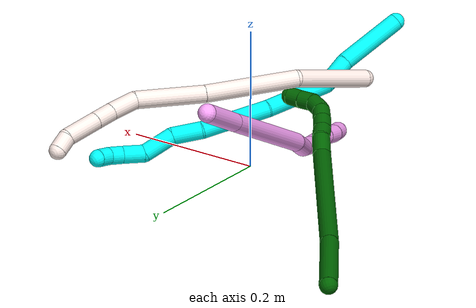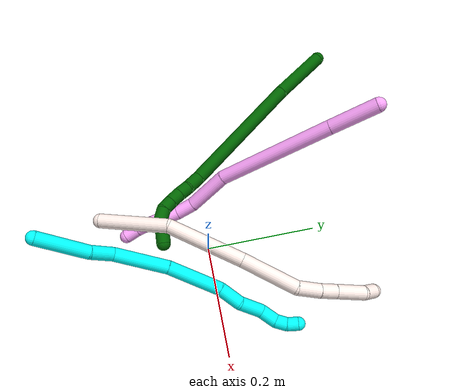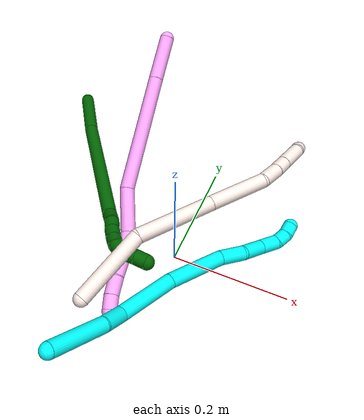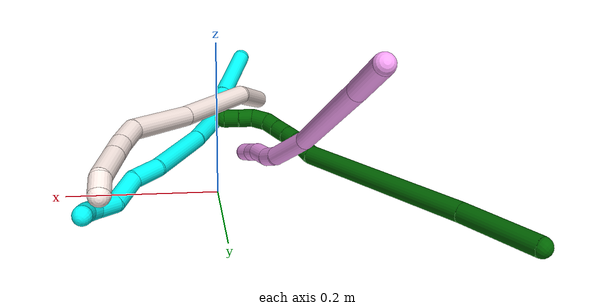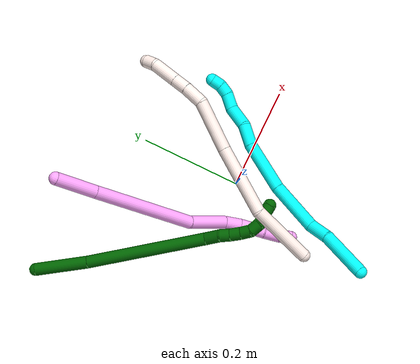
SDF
<sdf version="1.7">
 <world name="default">
  <model name="3">
   <static>0</static>
   <link name="3">
    <collision name="collision-cylinder-e_1_1_4">
     <pose>0.009274 -0.003301 -0.046771 3.07112 0.195273 2.45071</pose>
     <geometry><cylinder><radius>0.0125</radius><length>0.095592</length></cylinder></geometry>
     <surface>
      <friction><ode><mu>1.16</mu><mu2>1.16</mu2><slip1>0</slip1><slip2>0</slip2></ode></friction>
      <contact><ode><kp>1e+06</kp><kd>1</kd><max_vel>0</max_vel><min_depth>0.001</min_depth></ode></contact>
     </surface>
    </collision>
    <visual name="visual-cylinder-e_1_1_4">
     <pose>0.009274 -0.003301 -0.046771 3.07112 0.195273 2.45071</pose>
     <geometry><cylinder><radius>0.0125</radius><length>0.095592</length></cylinder></geometry>
     <material><ambient>0.003922 1 0.996078 1</ambient></material>
    </visual>
    <collision name="collision-cylinder-e_2_4_5">
     <pose>0.021694 -0.012621 -0.114263 2.85893 0.144792 0.94279</pose>
     <geometry><cylinder><radius>0.0125</radius><length>0.04361</length></cylinder></geometry>
     <surface>
      <friction><ode><mu>1.16</mu><mu2>1.16</mu2><slip1>0</slip1><slip2>0</slip2></ode></friction>
      <contact><ode><kp>1e+06</kp><kd>1</kd><max_vel>0</max_vel><min_depth>0.001</min_depth></ode></contact>
     </surface>
    </collision>
    <visual name="visual-cylinder-e_2_4_5">
     <pose>0.021694 -0.012621 -0.114263 2.85893 0.144792 0.94279</pose>
     <geometry><cylinder><radius>0.0125</radius><length>0.04361</length></cylinder></geometry>
     <material><ambient>0.003922 1 0.996078 1</ambient></material>
    </visual>
    <collision name="collision-cylinder-e_3_5_6">
     <pose>0.025186 -0.010293 -0.183752 -2.9721 0.006976 -0.082069</pose>
     <geometry><cylinder><radius>0.0125</radius><length>0.098958</length></cylinder></geometry>
     <surface>
      <friction><ode><mu>1.16</mu><mu2>1.16</mu2><slip1>0</slip1><slip2>0</slip2></ode></friction>
      <contact><ode><kp>1e+06</kp><kd>1</kd><max_vel>0</max_vel><min_depth>0.001</min_depth></ode></contact>
     </surface>
    </collision>
    <visual name="visual-cylinder-e_3_5_6">
     <pose>0.025186 -0.010293 -0.183752 -2.9721 0.006976 -0.082069</pose>
     <geometry><cylinder><radius>0.0125</radius><length>0.098958</length></cylinder></geometry>
     <material><ambient>0.003922 1 0.996078 1</ambient></material>
    </visual>
    <collision name="collision-cylinder-e_4_6_7">
     <pose>0.03208 0.011225 -0.280366 -2.87295 0.131211 -0.905072</pose>
     <geometry><cylinder><radius>0.0125</radius><length>0.100111</length></cylinder></geometry>
     <surface>
      <friction><ode><mu>1.16</mu><mu2>1.16</mu2><slip1>0</slip1><slip2>0</slip2></ode></friction>
      <contact><ode><kp>1e+06</kp><kd>1</kd><max_vel>0</max_vel><min_depth>0.001</min_depth></ode></contact>
     </surface>
    </collision>
    <visual name="visual-cylinder-e_4_6_7">
     <pose>0.03208 0.011225 -0.280366 -2.87295 0.131211 -0.905072</pose>
     <geometry><cylinder><radius>0.0125</radius><length>0.100111</length></cylinder></geometry>
     <material><ambient>0.003922 1 0.996078 1</ambient></material>
    </visual>
    <collision name="collision-cylinder-e_5_7_8">
     <pose>0.045021 0.032934 -0.346704 -2.70906 0.304091 -1.218</pose>
     <geometry><cylinder><radius>0.0125</radius><length>0.042695</length></cylinder></geometry>
     <surface>
      <friction><ode><mu>1.16</mu><mu2>1.16</mu2><slip1>0</slip1><slip2>0</slip2></ode></friction>
      <contact><ode><kp>1e+06</kp><kd>1</kd><max_vel>0</max_vel><min_depth>0.001</min_depth></ode></contact>
     </surface>
    </collision>
    <visual name="visual-cylinder-e_5_7_8">
     <pose>0.045021 0.032934 -0.346704 -2.70906 0.304091 -1.218</pose>
     <geometry><cylinder><radius>0.0125</radius><length>0.042695</length></cylinder></geometry>
     <material><ambient>0.003922 1 0.996078 1</ambient></material>
    </visual>
    <collision name="collision-cylinder-e_6_8_9">
     <pose>0.057024 0.042229 -0.387592 -3.10782 0.245353 -2.86932</pose>
     <geometry><cylinder><radius>0.0125</radius><length>0.046201</length></cylinder></geometry>
     <surface>
      <friction><ode><mu>1.16</mu><mu2>1.16</mu2><slip1>0</slip1><slip2>0</slip2></ode></friction>
      <contact><ode><kp>1e+06</kp><kd>1</kd><max_vel>0</max_vel><min_depth>0.001</min_depth></ode></contact>
     </surface>
    </collision>
    <visual name="visual-cylinder-e_6_8_9">
     <pose>0.057024 0.042229 -0.387592 -3.10782 0.245353 -2.86932</pose>
     <geometry><cylinder><radius>0.0125</radius><length>0.046201</length></cylinder></geometry>
     <material><ambient>0.003922 1 0.996078 1</ambient></material>
    </visual>
    <collision name="collision-cylinder-e_7_9_10">
     <pose>0.065696 0.051062 -0.42319 -2.59259 0.195268 -0.669439</pose>
     <geometry><cylinder><radius>0.0125</radius><length>0.031553</length></cylinder></geometry>
     <surface>
      <friction><ode><mu>1.16</mu><mu2>1.16</mu2><slip1>0</slip1><slip2>0</slip2></ode></friction>
      <contact><ode><kp>1e+06</kp><kd>1</kd><max_vel>0</max_vel><min_depth>0.001</min_depth></ode></contact>
     </surface>
    </collision>
    <visual name="visual-cylinder-e_7_9_10">
     <pose>0.065696 0.051062 -0.42319 -2.59259 0.195268 -0.669439</pose>
     <geometry><cylinder><radius>0.0125</radius><length>0.031553</length></cylinder></geometry>
     <material><ambient>0.003922 1 0.996078 1</ambient></material>
    </visual>
    <collision name="collision-cylinder-e_8_10_11">
     <pose>0.067379 0.063485 -0.446001 -2.71679 -0.129927 0.585965</pose>
     <geometry><cylinder><radius>0.0125</radius><length>0.021272</length></cylinder></geometry>
     <surface>
      <friction><ode><mu>1.16</mu><mu2>1.16</mu2><slip1>0</slip1><slip2>0</slip2></ode></friction>
      <contact><ode><kp>1e+06</kp><kd>1</kd><max_vel>0</max_vel><min_depth>0.001</min_depth></ode></contact>
     </surface>
    </collision>
    <visual name="visual-cylinder-e_8_10_11">
     <pose>0.067379 0.063485 -0.446001 -2.71679 -0.129927 0.585965</pose>
     <geometry><cylinder><radius>0.0125</radius><length>0.021272</length></cylinder></geometry>
     <material><ambient>0.003922 1 0.996078 1</ambient></material>
    </visual>
    <collision name="collision-cylinder-e_9_11_2">
     <pose>0.06203 0.069919 -0.464552 -2.91217 -0.408192 2.1257</pose>
     <geometry><cylinder><radius>0.0125</radius><length>0.020009</length></cylinder></geometry>
     <surface>
      <friction><ode><mu>1.16</mu><mu2>1.16</mu2><slip1>0</slip1><slip2>0</slip2></ode></friction>
      <contact><ode><kp>1e+06</kp><kd>1</kd><max_vel>0</max_vel><min_depth>0.001</min_depth></ode></contact>
     </surface>
    </collision>
    <visual name="visual-cylinder-e_9_11_2">
     <pose>0.06203 0.069919 -0.464552 -2.91217 -0.408192 2.1257</pose>
     <geometry><cylinder><radius>0.0125</radius><length>0.020009</length></cylinder></geometry>
     <material><ambient>0.003922 1 0.996078 1</ambient></material>
    </visual>
    <collision name="collision-sphere-2">
     <pose>0.058059 0.072008 -0.473494 0 -0 0</pose>
     <geometry><sphere><radius>0.0125</radius></sphere></geometry>
     <surface>
      <friction><ode><mu>1.16</mu><mu2>1.16</mu2><slip1>0</slip1><slip2>0</slip2></ode></friction>
      <contact><ode><kp>1e+06</kp><kd>1</kd><max_vel>0</max_vel><min_depth>0.001</min_depth></ode></contact>
     </surface>
    </collision>
    <visual name="visual-sphere-2">
     <pose>0.058059 0.072008 -0.473494 0 -0 0</pose>
     <geometry><sphere><radius>0.0125</radius></sphere></geometry>
     <material><ambient>0.003922 1 0.996078 1</ambient></material>
    </visual>
    <collision name="collision-sphere-11">
     <pose>0.066001 0.067831 -0.45561 0 -0 0</pose>
     <geometry><sphere><radius>0.0125</radius></sphere></geometry>
     <surface>
      <friction><ode><mu>1.16</mu><mu2>1.16</mu2><slip1>0</slip1><slip2>0</slip2></ode></friction>
      <contact><ode><kp>1e+06</kp><kd>1</kd><max_vel>0</max_vel><min_depth>0.001</min_depth></ode></contact>
     </surface>
    </collision>
    <visual name="visual-sphere-11">
     <pose>0.066001 0.067831 -0.45561 0 -0 0</pose>
     <geometry><sphere><radius>0.0125</radius></sphere></geometry>
     <material><ambient>0.003922 1 0.996078 1</ambient></material>
    </visual>
    <collision name="collision-sphere-10">
     <pose>0.068757 0.059138 -0.436392 0 -0 0</pose>
     <geometry><sphere><radius>0.0125</radius></sphere></geometry>
     <surface>
      <friction><ode><mu>1.16</mu><mu2>1.16</mu2><slip1>0</slip1><slip2>0</slip2></ode></friction>
      <contact><ode><kp>1e+06</kp><kd>1</kd><max_vel>0</max_vel><min_depth>0.001</min_depth></ode></contact>
     </surface>
    </collision>
    <visual name="visual-sphere-10">
     <pose>0.068757 0.059138 -0.436392 0 -0 0</pose>
     <geometry><sphere><radius>0.0125</radius></sphere></geometry>
     <material><ambient>0.003922 1 0.996078 1</ambient></material>
    </visual>
    <collision name="collision-sphere-9">
     <pose>0.062635 0.042986 -0.409988 0 -0 0</pose>
     <geometry><sphere><radius>0.0125</radius></sphere></geometry>
     <surface>
      <friction><ode><mu>1.16</mu><mu2>1.16</mu2><slip1>0</slip1><slip2>0</slip2></ode></friction>
      <contact><ode><kp>1e+06</kp><kd>1</kd><max_vel>0</max_vel><min_depth>0.001</min_depth></ode></contact>
     </surface>
    </collision>
    <visual name="visual-sphere-9">
     <pose>0.062635 0.042986 -0.409988 0 -0 0</pose>
     <geometry><sphere><radius>0.0125</radius></sphere></geometry>
     <material><ambient>0.003922 1 0.996078 1</ambient></material>
    </visual>
    <collision name="collision-sphere-4">
     <pose>0.018548 -0.006603 -0.093542 0 -0 0</pose>
     <geometry><sphere><radius>0.0125</radius></sphere></geometry>
     <surface>
      <friction><ode><mu>1.16</mu><mu2>1.16</mu2><slip1>0</slip1><slip2>0</slip2></ode></friction>
      <contact><ode><kp>1e+06</kp><kd>1</kd><max_vel>0</max_vel><min_depth>0.001</min_depth></ode></contact>
     </surface>
    </collision>
    <visual name="visual-sphere-4">
     <pose>0.018548 -0.006603 -0.093542 0 -0 0</pose>
     <geometry><sphere><radius>0.0125</radius></sphere></geometry>
     <material><ambient>0.003922 1 0.996078 1</ambient></material>
    </visual>
    <collision name="collision-sphere-1">
     <geometry><sphere><radius>0.0125</radius></sphere></geometry>
     <surface>
      <friction><ode><mu>1.16</mu><mu2>1.16</mu2><slip1>0</slip1><slip2>0</slip2></ode></friction>
      <contact><ode><kp>1e+06</kp><kd>1</kd><max_vel>0</max_vel><min_depth>0.001</min_depth></ode></contact>
     </surface>
    </collision>
    <visual name="visual-sphere-1">
     <geometry><sphere><radius>0.0125</radius></sphere></geometry>
     <material><ambient>0.003922 1 0.996078 1</ambient></material>
    </visual>
    <collision name="collision-sphere-8">
     <pose>0.051413 0.041472 -0.365196 0 -0 0</pose>
     <geometry><sphere><radius>0.0125</radius></sphere></geometry>
     <surface>
      <friction><ode><mu>1.16</mu><mu2>1.16</mu2><slip1>0</slip1><slip2>0</slip2></ode></friction>
      <contact><ode><kp>1e+06</kp><kd>1</kd><max_vel>0</max_vel><min_depth>0.001</min_depth></ode></contact>
     </surface>
    </collision>
    <visual name="visual-sphere-8">
     <pose>0.051413 0.041472 -0.365196 0 -0 0</pose>
     <geometry><sphere><radius>0.0125</radius></sphere></geometry>
     <material><ambient>0.003922 1 0.996078 1</ambient></material>
    </visual>
    <collision name="collision-sphere-5">
     <pose>0.02484 -0.018639 -0.134983 0 -0 0</pose>
     <geometry><sphere><radius>0.0125</radius></sphere></geometry>
     <surface>
      <friction><ode><mu>1.16</mu><mu2>1.16</mu2><slip1>0</slip1><slip2>0</slip2></ode></friction>
      <contact><ode><kp>1e+06</kp><kd>1</kd><max_vel>0</max_vel><min_depth>0.001</min_depth></ode></contact>
     </surface>
    </collision>
    <visual name="visual-sphere-5">
     <pose>0.02484 -0.018639 -0.134983 0 -0 0</pose>
     <geometry><sphere><radius>0.0125</radius></sphere></geometry>
     <material><ambient>0.003922 1 0.996078 1</ambient></material>
    </visual>
    <collision name="collision-sphere-6">
     <pose>0.025531 -0.001946 -0.232521 0 -0 0</pose>
     <geometry><sphere><radius>0.0125</radius></sphere></geometry>
     <surface>
      <friction><ode><mu>1.16</mu><mu2>1.16</mu2><slip1>0</slip1><slip2>0</slip2></ode></friction>
      <contact><ode><kp>1e+06</kp><kd>1</kd><max_vel>0</max_vel><min_depth>0.001</min_depth></ode></contact>
     </surface>
    </collision>
    <visual name="visual-sphere-6">
     <pose>0.025531 -0.001946 -0.232521 0 -0 0</pose>
     <geometry><sphere><radius>0.0125</radius></sphere></geometry>
     <material><ambient>0.003922 1 0.996078 1</ambient></material>
    </visual>
    <collision name="collision-sphere-7">
     <pose>0.038629 0.024397 -0.328211 0 -0 0</pose>
     <geometry><sphere><radius>0.0125</radius></sphere></geometry>
     <surface>
      <friction><ode><mu>1.16</mu><mu2>1.16</mu2><slip1>0</slip1><slip2>0</slip2></ode></friction>
      <contact><ode><kp>1e+06</kp><kd>1</kd><max_vel>0</max_vel><min_depth>0.001</min_depth></ode></contact>
     </surface>
    </collision>
    <visual name="visual-sphere-7">
     <pose>0.038629 0.024397 -0.328211 0 -0 0</pose>
     <geometry><sphere><radius>0.0125</radius></sphere></geometry>
     <material><ambient>0.003922 1 0.996078 1</ambient></material>
    </visual>
    <inertial>
     <pose>0.033681 0.013914 -0.241101 0 -0 0</pose>
     <mass>0.5</mass>
     <inertia>
      <ixx>5.6e-05</ixx>
      <ixy>0</ixy>
      <ixz>0</ixz>
      <iyy>-9.8e-05</iyy>
      <iyz>0</iyz>
      <izz>-0.000106</izz>
     </inertia>
    </inertial>
   </link>
   <pose>-0.055623 -0.277399 0.142916 1.17594 0.673656 -0.551778</pose>
  </model>
  <model name="4">
   <static>0</static>
   <link name="4">
    <collision name="collision-cylinder-e_1_1_4">
     <pose>0.004588 -0.002611 -0.040189 3.07672 0.113434 2.10319</pose>
     <geometry><cylinder><radius>0.0125</radius><length>0.081069</length></cylinder></geometry>
     <surface>
      <friction><ode><mu>1.16</mu><mu2>1.16</mu2><slip1>0</slip1><slip2>0</slip2></ode></friction>
      <contact><ode><kp>1e+06</kp><kd>1</kd><max_vel>0</max_vel><min_depth>0.001</min_depth></ode></contact>
     </surface>
    </collision>
    <visual name="visual-cylinder-e_1_1_4">
     <pose>0.004588 -0.002611 -0.040189 3.07672 0.113434 2.10319</pose>
     <geometry><cylinder><radius>0.0125</radius><length>0.081069</length></cylinder></geometry>
     <material><ambient>1 0.65098 0.996078 1</ambient></material>
    </visual>
    <collision name="collision-cylinder-e_2_4_5">
     <pose>0.020366 -0.013215 -0.182162 3.06323 0.109166 1.89681</pose>
     <geometry><cylinder><radius>0.0125</radius><length>0.205416</length></cylinder></geometry>
     <surface>
      <friction><ode><mu>1.16</mu><mu2>1.16</mu2><slip1>0</slip1><slip2>0</slip2></ode></friction>
      <contact><ode><kp>1e+06</kp><kd>1</kd><max_vel>0</max_vel><min_depth>0.001</min_depth></ode></contact>
     </surface>
    </collision>
    <visual name="visual-cylinder-e_2_4_5">
     <pose>0.020366 -0.013215 -0.182162 3.06323 0.109166 1.89681</pose>
     <geometry><cylinder><radius>0.0125</radius><length>0.205416</length></cylinder></geometry>
     <material><ambient>1 0.65098 0.996078 1</ambient></material>
    </visual>
    <collision name="collision-cylinder-e_3_5_6">
     <pose>0.040039 -0.033431 -0.319 2.80609 0.224632 1.17514</pose>
     <geometry><cylinder><radius>0.0125</radius><length>0.076163</length></cylinder></geometry>
     <surface>
      <friction><ode><mu>1.16</mu><mu2>1.16</mu2><slip1>0</slip1><slip2>0</slip2></ode></friction>
      <contact><ode><kp>1e+06</kp><kd>1</kd><max_vel>0</max_vel><min_depth>0.001</min_depth></ode></contact>
     </surface>
    </collision>
    <visual name="visual-cylinder-e_3_5_6">
     <pose>0.040039 -0.033431 -0.319 2.80609 0.224632 1.17514</pose>
     <geometry><cylinder><radius>0.0125</radius><length>0.076163</length></cylinder></geometry>
     <material><ambient>1 0.65098 0.996078 1</ambient></material>
    </visual>
    <collision name="collision-cylinder-e_4_6_7">
     <pose>0.047783 -0.049927 -0.369713 2.87521 -0.045481 -0.336301</pose>
     <geometry><cylinder><radius>0.0125</radius><length>0.032495</length></cylinder></geometry>
     <surface>
      <friction><ode><mu>1.16</mu><mu2>1.16</mu2><slip1>0</slip1><slip2>0</slip2></ode></friction>
      <contact><ode><kp>1e+06</kp><kd>1</kd><max_vel>0</max_vel><min_depth>0.001</min_depth></ode></contact>
     </surface>
    </collision>
    <visual name="visual-cylinder-e_4_6_7">
     <pose>0.047783 -0.049927 -0.369713 2.87521 -0.045481 -0.336301</pose>
     <geometry><cylinder><radius>0.0125</radius><length>0.032495</length></cylinder></geometry>
     <material><ambient>1 0.65098 0.996078 1</ambient></material>
    </visual>
    <collision name="collision-cylinder-e_5_7_8">
     <pose>0.041058 -0.059608 -0.408157 2.90854 -0.250239 -1.64259</pose>
     <geometry><cylinder><radius>0.0125</radius><length>0.048345</length></cylinder></geometry>
     <surface>
      <friction><ode><mu>1.16</mu><mu2>1.16</mu2><slip1>0</slip1><slip2>0</slip2></ode></friction>
      <contact><ode><kp>1e+06</kp><kd>1</kd><max_vel>0</max_vel><min_depth>0.001</min_depth></ode></contact>
     </surface>
    </collision>
    <visual name="visual-cylinder-e_5_7_8">
     <pose>0.041058 -0.059608 -0.408157 2.90854 -0.250239 -1.64259</pose>
     <geometry><cylinder><radius>0.0125</radius><length>0.048345</length></cylinder></geometry>
     <material><ambient>1 0.65098 0.996078 1</ambient></material>
    </visual>
    <collision name="collision-cylinder-e_6_8_9">
     <pose>0.033557 -0.06822 -0.446458 2.93797 -0.095341 -0.873725</pose>
     <geometry><cylinder><radius>0.0125</radius><length>0.031828</length></cylinder></geometry>
     <surface>
      <friction><ode><mu>1.16</mu><mu2>1.16</mu2><slip1>0</slip1><slip2>0</slip2></ode></friction>
      <contact><ode><kp>1e+06</kp><kd>1</kd><max_vel>0</max_vel><min_depth>0.001</min_depth></ode></contact>
     </surface>
    </collision>
    <visual name="visual-cylinder-e_6_8_9">
     <pose>0.033557 -0.06822 -0.446458 2.93797 -0.095341 -0.873725</pose>
     <geometry><cylinder><radius>0.0125</radius><length>0.031828</length></cylinder></geometry>
     <material><ambient>1 0.65098 0.996078 1</ambient></material>
    </visual>
    <collision name="collision-cylinder-e_7_9_2">
     <pose>0.031224 -0.075652 -0.473539 2.79108 -0.066378 -0.370692</pose>
     <geometry><cylinder><radius>0.0125</radius><length>0.024684</length></cylinder></geometry>
     <surface>
      <friction><ode><mu>1.16</mu><mu2>1.16</mu2><slip1>0</slip1><slip2>0</slip2></ode></friction>
      <contact><ode><kp>1e+06</kp><kd>1</kd><max_vel>0</max_vel><min_depth>0.001</min_depth></ode></contact>
     </surface>
    </collision>
    <visual name="visual-cylinder-e_7_9_2">
     <pose>0.031224 -0.075652 -0.473539 2.79108 -0.066378 -0.370692</pose>
     <geometry><cylinder><radius>0.0125</radius><length>0.024684</length></cylinder></geometry>
     <material><ambient>1 0.65098 0.996078 1</ambient></material>
    </visual>
    <collision name="collision-sphere-2">
     <pose>0.030405 -0.079881 -0.485105 0 -0 0</pose>
     <geometry><sphere><radius>0.0125</radius></sphere></geometry>
     <surface>
      <friction><ode><mu>1.16</mu><mu2>1.16</mu2><slip1>0</slip1><slip2>0</slip2></ode></friction>
      <contact><ode><kp>1e+06</kp><kd>1</kd><max_vel>0</max_vel><min_depth>0.001</min_depth></ode></contact>
     </surface>
    </collision>
    <visual name="visual-sphere-2">
     <pose>0.030405 -0.079881 -0.485105 0 -0 0</pose>
     <geometry><sphere><radius>0.0125</radius></sphere></geometry>
     <material><ambient>1 0.65098 0.996078 1</ambient></material>
    </visual>
    <collision name="collision-sphere-9">
     <pose>0.032042 -0.071424 -0.461973 0 -0 0</pose>
     <geometry><sphere><radius>0.0125</radius></sphere></geometry>
     <surface>
      <friction><ode><mu>1.16</mu><mu2>1.16</mu2><slip1>0</slip1><slip2>0</slip2></ode></friction>
      <contact><ode><kp>1e+06</kp><kd>1</kd><max_vel>0</max_vel><min_depth>0.001</min_depth></ode></contact>
     </surface>
    </collision>
    <visual name="visual-sphere-9">
     <pose>0.032042 -0.071424 -0.461973 0 -0 0</pose>
     <geometry><sphere><radius>0.0125</radius></sphere></geometry>
     <material><ambient>1 0.65098 0.996078 1</ambient></material>
    </visual>
    <collision name="collision-sphere-4">
     <pose>0.009176 -0.005222 -0.080378 0 -0 0</pose>
     <geometry><sphere><radius>0.0125</radius></sphere></geometry>
     <surface>
      <friction><ode><mu>1.16</mu><mu2>1.16</mu2><slip1>0</slip1><slip2>0</slip2></ode></friction>
      <contact><ode><kp>1e+06</kp><kd>1</kd><max_vel>0</max_vel><min_depth>0.001</min_depth></ode></contact>
     </surface>
    </collision>
    <visual name="visual-sphere-4">
     <pose>0.009176 -0.005222 -0.080378 0 -0 0</pose>
     <geometry><sphere><radius>0.0125</radius></sphere></geometry>
     <material><ambient>1 0.65098 0.996078 1</ambient></material>
    </visual>
    <collision name="collision-sphere-1">
     <geometry><sphere><radius>0.0125</radius></sphere></geometry>
     <surface>
      <friction><ode><mu>1.16</mu><mu2>1.16</mu2><slip1>0</slip1><slip2>0</slip2></ode></friction>
      <contact><ode><kp>1e+06</kp><kd>1</kd><max_vel>0</max_vel><min_depth>0.001</min_depth></ode></contact>
     </surface>
    </collision>
    <visual name="visual-sphere-1">
     <geometry><sphere><radius>0.0125</radius></sphere></geometry>
     <material><ambient>1 0.65098 0.996078 1</ambient></material>
    </visual>
    <collision name="collision-sphere-8">
     <pose>0.035072 -0.065017 -0.430944 0 -0 0</pose>
     <geometry><sphere><radius>0.0125</radius></sphere></geometry>
     <surface>
      <friction><ode><mu>1.16</mu><mu2>1.16</mu2><slip1>0</slip1><slip2>0</slip2></ode></friction>
      <contact><ode><kp>1e+06</kp><kd>1</kd><max_vel>0</max_vel><min_depth>0.001</min_depth></ode></contact>
     </surface>
    </collision>
    <visual name="visual-sphere-8">
     <pose>0.035072 -0.065017 -0.430944 0 -0 0</pose>
     <geometry><sphere><radius>0.0125</radius></sphere></geometry>
     <material><ambient>1 0.65098 0.996078 1</ambient></material>
    </visual>
    <collision name="collision-sphere-5">
     <pose>0.031556 -0.021208 -0.283945 0 -0 0</pose>
     <geometry><sphere><radius>0.0125</radius></sphere></geometry>
     <surface>
      <friction><ode><mu>1.16</mu><mu2>1.16</mu2><slip1>0</slip1><slip2>0</slip2></ode></friction>
      <contact><ode><kp>1e+06</kp><kd>1</kd><max_vel>0</max_vel><min_depth>0.001</min_depth></ode></contact>
     </surface>
    </collision>
    <visual name="visual-sphere-5">
     <pose>0.031556 -0.021208 -0.283945 0 -0 0</pose>
     <geometry><sphere><radius>0.0125</radius></sphere></geometry>
     <material><ambient>1 0.65098 0.996078 1</ambient></material>
    </visual>
    <collision name="collision-sphere-6">
     <pose>0.048521 -0.045654 -0.354055 0 -0 0</pose>
     <geometry><sphere><radius>0.0125</radius></sphere></geometry>
     <surface>
      <friction><ode><mu>1.16</mu><mu2>1.16</mu2><slip1>0</slip1><slip2>0</slip2></ode></friction>
      <contact><ode><kp>1e+06</kp><kd>1</kd><max_vel>0</max_vel><min_depth>0.001</min_depth></ode></contact>
     </surface>
    </collision>
    <visual name="visual-sphere-6">
     <pose>0.048521 -0.045654 -0.354055 0 -0 0</pose>
     <geometry><sphere><radius>0.0125</radius></sphere></geometry>
     <material><ambient>1 0.65098 0.996078 1</ambient></material>
    </visual>
    <collision name="collision-sphere-7">
     <pose>0.047044 -0.054199 -0.385371 0 -0 0</pose>
     <geometry><sphere><radius>0.0125</radius></sphere></geometry>
     <surface>
      <friction><ode><mu>1.16</mu><mu2>1.16</mu2><slip1>0</slip1><slip2>0</slip2></ode></friction>
      <contact><ode><kp>1e+06</kp><kd>1</kd><max_vel>0</max_vel><min_depth>0.001</min_depth></ode></contact>
     </surface>
    </collision>
    <visual name="visual-sphere-7">
     <pose>0.047044 -0.054199 -0.385371 0 -0 0</pose>
     <geometry><sphere><radius>0.0125</radius></sphere></geometry>
     <material><ambient>1 0.65098 0.996078 1</ambient></material>
    </visual>
    <inertial>
     <pose>0.025963 -0.02803 -0.245236 0 -0 0</pose>
     <mass>0.5</mass>
     <inertia><ixx>0.000517</ixx><ixy>0</ixy><ixz>0</ixz><iyy>0.000987</iyy><iyz>0</iyz><izz>-5e-05</izz></inertia>
    </inertial>
   </link>
   <pose>-0.146034 0.298904 0.212462 -0.61284 1.07199 0.921083</pose>
  </model>
  <model name="6">
   <static>0</static>
   <link name="6">
    <collision name="collision-cylinder-e_1_1_4">
     <pose>-0.005516 -0.027228 -0.044861 2.59607 -0.104732 -0.370449</pose>
     <geometry><cylinder><radius>0.0125</radius><length>0.105533</length></cylinder></geometry>
     <surface>
      <friction><ode><mu>1.16</mu><mu2>1.16</mu2><slip1>0</slip1><slip2>0</slip2></ode></friction>
      <contact><ode><kp>1e+06</kp><kd>1</kd><max_vel>0</max_vel><min_depth>0.001</min_depth></ode></contact>
     </surface>
    </collision>
    <visual name="visual-cylinder-e_1_1_4">
     <pose>-0.005516 -0.027228 -0.044861 2.59607 -0.104732 -0.370449</pose>
     <geometry><cylinder><radius>0.0125</radius><length>0.105533</length></cylinder></geometry>
     <material><ambient>0 0.392157 0.003922 1</ambient></material>
    </visual>
    <collision name="collision-cylinder-e_2_4_5">
     <pose>-0.029443 -0.113259 -0.1919 2.61939 -0.154918 -0.565387</pose>
     <geometry><cylinder><radius>0.0125</radius><length>0.23864</length></cylinder></geometry>
     <surface>
      <friction><ode><mu>1.16</mu><mu2>1.16</mu2><slip1>0</slip1><slip2>0</slip2></ode></friction>
      <contact><ode><kp>1e+06</kp><kd>1</kd><max_vel>0</max_vel><min_depth>0.001</min_depth></ode></contact>
     </surface>
    </collision>
    <visual name="visual-cylinder-e_2_4_5">
     <pose>-0.029443 -0.113259 -0.1919 2.61939 -0.154918 -0.565387</pose>
     <geometry><cylinder><radius>0.0125</radius><length>0.23864</length></cylinder></geometry>
     <material><ambient>0 0.392157 0.003922 1</ambient></material>
    </visual>
    <collision name="collision-cylinder-e_3_5_6">
     <pose>-0.046554 -0.175433 -0.309362 2.92449 0.082888 0.727182</pose>
     <geometry><cylinder><radius>0.0125</radius><length>0.031408</length></cylinder></geometry>
     <surface>
      <friction><ode><mu>1.16</mu><mu2>1.16</mu2><slip1>0</slip1><slip2>0</slip2></ode></friction>
      <contact><ode><kp>1e+06</kp><kd>1</kd><max_vel>0</max_vel><min_depth>0.001</min_depth></ode></contact>
     </surface>
    </collision>
    <visual name="visual-cylinder-e_3_5_6">
     <pose>-0.046554 -0.175433 -0.309362 2.92449 0.082888 0.727182</pose>
     <geometry><cylinder><radius>0.0125</radius><length>0.031408</length></cylinder></geometry>
     <material><ambient>0 0.392157 0.003922 1</ambient></material>
    </visual>
    <collision name="collision-cylinder-e_4_6_7">
     <pose>-0.045124 -0.18373 -0.333603 2.63887 0.012727 0.049554</pose>
     <geometry><cylinder><radius>0.0125</radius><length>0.020448</length></cylinder></geometry>
     <surface>
      <friction><ode><mu>1.16</mu><mu2>1.16</mu2><slip1>0</slip1><slip2>0</slip2></ode></friction>
      <contact><ode><kp>1e+06</kp><kd>1</kd><max_vel>0</max_vel><min_depth>0.001</min_depth></ode></contact>
     </surface>
    </collision>
    <visual name="visual-cylinder-e_4_6_7">
     <pose>-0.045124 -0.18373 -0.333603 2.63887 0.012727 0.049554</pose>
     <geometry><cylinder><radius>0.0125</radius><length>0.020448</length></cylinder></geometry>
     <material><ambient>0 0.392157 0.003922 1</ambient></material>
    </visual>
    <collision name="collision-cylinder-e_5_7_8">
     <pose>-0.045326 -0.193133 -0.352507 2.71853 -0.030504 -0.141822</pose>
     <geometry><cylinder><radius>0.0125</radius><length>0.021824</length></cylinder></geometry>
     <surface>
      <friction><ode><mu>1.16</mu><mu2>1.16</mu2><slip1>0</slip1><slip2>0</slip2></ode></friction>
      <contact><ode><kp>1e+06</kp><kd>1</kd><max_vel>0</max_vel><min_depth>0.001</min_depth></ode></contact>
     </surface>
    </collision>
    <visual name="visual-cylinder-e_5_7_8">
     <pose>-0.045326 -0.193133 -0.352507 2.71853 -0.030504 -0.141822</pose>
     <geometry><cylinder><radius>0.0125</radius><length>0.021824</length></cylinder></geometry>
     <material><ambient>0 0.392157 0.003922 1</ambient></material>
    </visual>
    <collision name="collision-cylinder-e_6_8_9">
     <pose>-0.046031 -0.200701 -0.372036 2.82972 -0.036925 -0.233829</pose>
     <geometry><cylinder><radius>0.0125</radius><length>0.020152</length></cylinder></geometry>
     <surface>
      <friction><ode><mu>1.16</mu><mu2>1.16</mu2><slip1>0</slip1><slip2>0</slip2></ode></friction>
      <contact><ode><kp>1e+06</kp><kd>1</kd><max_vel>0</max_vel><min_depth>0.001</min_depth></ode></contact>
     </surface>
    </collision>
    <visual name="visual-cylinder-e_6_8_9">
     <pose>-0.046031 -0.200701 -0.372036 2.82972 -0.036925 -0.233829</pose>
     <geometry><cylinder><radius>0.0125</radius><length>0.020152</length></cylinder></geometry>
     <material><ambient>0 0.392157 0.003922 1</ambient></material>
    </visual>
    <collision name="collision-cylinder-e_7_9_10">
     <pose>-0.051124 -0.204824 -0.391488 3.03726 -0.444045 -2.687</pose>
     <geometry><cylinder><radius>0.0125</radius><length>0.021976</length></cylinder></geometry>
     <surface>
      <friction><ode><mu>1.16</mu><mu2>1.16</mu2><slip1>0</slip1><slip2>0</slip2></ode></friction>
      <contact><ode><kp>1e+06</kp><kd>1</kd><max_vel>0</max_vel><min_depth>0.001</min_depth></ode></contact>
     </surface>
    </collision>
    <visual name="visual-cylinder-e_7_9_10">
     <pose>-0.051124 -0.204824 -0.391488 3.03726 -0.444045 -2.687</pose>
     <geometry><cylinder><radius>0.0125</radius><length>0.021976</length></cylinder></geometry>
     <material><ambient>0 0.392157 0.003922 1</ambient></material>
    </visual>
    <collision name="collision-cylinder-e_8_10_11">
     <pose>-0.063405 -0.204583 -0.407779 -2.94569 -0.857089 2.71786</pose>
     <geometry><cylinder><radius>0.0125</radius><length>0.020005</length></cylinder></geometry>
     <surface>
      <friction><ode><mu>1.16</mu><mu2>1.16</mu2><slip1>0</slip1><slip2>0</slip2></ode></friction>
      <contact><ode><kp>1e+06</kp><kd>1</kd><max_vel>0</max_vel><min_depth>0.001</min_depth></ode></contact>
     </surface>
    </collision>
    <visual name="visual-cylinder-e_8_10_11">
     <pose>-0.063405 -0.204583 -0.407779 -2.94569 -0.857089 2.71786</pose>
     <geometry><cylinder><radius>0.0125</radius><length>0.020005</length></cylinder></geometry>
     <material><ambient>0 0.392157 0.003922 1</ambient></material>
    </visual>
    <collision name="collision-cylinder-e_9_11_2">
     <pose>-0.078146 -0.202419 -0.421116 -3.01381 -0.800063 2.84125</pose>
     <geometry><cylinder><radius>0.0125</radius><length>0.020014</length></cylinder></geometry>
     <surface>
      <friction><ode><mu>1.16</mu><mu2>1.16</mu2><slip1>0</slip1><slip2>0</slip2></ode></friction>
      <contact><ode><kp>1e+06</kp><kd>1</kd><max_vel>0</max_vel><min_depth>0.001</min_depth></ode></contact>
     </surface>
    </collision>
    <visual name="visual-cylinder-e_9_11_2">
     <pose>-0.078146 -0.202419 -0.421116 -3.01381 -0.800063 2.84125</pose>
     <geometry><cylinder><radius>0.0125</radius><length>0.020014</length></cylinder></geometry>
     <material><ambient>0 0.392157 0.003922 1</ambient></material>
    </visual>
    <collision name="collision-sphere-2">
     <pose>-0.085325 -0.201531 -0.428031 0 -0 0</pose>
     <geometry><sphere><radius>0.0125</radius></sphere></geometry>
     <surface>
      <friction><ode><mu>1.16</mu><mu2>1.16</mu2><slip1>0</slip1><slip2>0</slip2></ode></friction>
      <contact><ode><kp>1e+06</kp><kd>1</kd><max_vel>0</max_vel><min_depth>0.001</min_depth></ode></contact>
     </surface>
    </collision>
    <visual name="visual-sphere-2">
     <pose>-0.085325 -0.201531 -0.428031 0 -0 0</pose>
     <geometry><sphere><radius>0.0125</radius></sphere></geometry>
     <material><ambient>0 0.392157 0.003922 1</ambient></material>
    </visual>
    <collision name="collision-sphere-11">
     <pose>-0.070966 -0.203308 -0.414201 0 -0 0</pose>
     <geometry><sphere><radius>0.0125</radius></sphere></geometry>
     <surface>
      <friction><ode><mu>1.16</mu><mu2>1.16</mu2><slip1>0</slip1><slip2>0</slip2></ode></friction>
      <contact><ode><kp>1e+06</kp><kd>1</kd><max_vel>0</max_vel><min_depth>0.001</min_depth></ode></contact>
     </surface>
    </collision>
    <visual name="visual-sphere-11">
     <pose>-0.070966 -0.203308 -0.414201 0 -0 0</pose>
     <geometry><sphere><radius>0.0125</radius></sphere></geometry>
     <material><ambient>0 0.392157 0.003922 1</ambient></material>
    </visual>
    <collision name="collision-sphere-10">
     <pose>-0.055844 -0.205857 -0.401356 0 -0 0</pose>
     <geometry><sphere><radius>0.0125</radius></sphere></geometry>
     <surface>
      <friction><ode><mu>1.16</mu><mu2>1.16</mu2><slip1>0</slip1><slip2>0</slip2></ode></friction>
      <contact><ode><kp>1e+06</kp><kd>1</kd><max_vel>0</max_vel><min_depth>0.001</min_depth></ode></contact>
     </surface>
    </collision>
    <visual name="visual-sphere-10">
     <pose>-0.055844 -0.205857 -0.401356 0 -0 0</pose>
     <geometry><sphere><radius>0.0125</radius></sphere></geometry>
     <material><ambient>0 0.392157 0.003922 1</ambient></material>
    </visual>
    <collision name="collision-sphere-9">
     <pose>-0.046403 -0.20379 -0.381619 0 -0 0</pose>
     <geometry><sphere><radius>0.0125</radius></sphere></geometry>
     <surface>
      <friction><ode><mu>1.16</mu><mu2>1.16</mu2><slip1>0</slip1><slip2>0</slip2></ode></friction>
      <contact><ode><kp>1e+06</kp><kd>1</kd><max_vel>0</max_vel><min_depth>0.001</min_depth></ode></contact>
     </surface>
    </collision>
    <visual name="visual-sphere-9">
     <pose>-0.046403 -0.20379 -0.381619 0 -0 0</pose>
     <geometry><sphere><radius>0.0125</radius></sphere></geometry>
     <material><ambient>0 0.392157 0.003922 1</ambient></material>
    </visual>
    <collision name="collision-sphere-4">
     <pose>-0.011032 -0.054457 -0.089721 0 -0 0</pose>
     <geometry><sphere><radius>0.0125</radius></sphere></geometry>
     <surface>
      <friction><ode><mu>1.16</mu><mu2>1.16</mu2><slip1>0</slip1><slip2>0</slip2></ode></friction>
      <contact><ode><kp>1e+06</kp><kd>1</kd><max_vel>0</max_vel><min_depth>0.001</min_depth></ode></contact>
     </surface>
    </collision>
    <visual name="visual-sphere-4">
     <pose>-0.011032 -0.054457 -0.089721 0 -0 0</pose>
     <geometry><sphere><radius>0.0125</radius></sphere></geometry>
     <material><ambient>0 0.392157 0.003922 1</ambient></material>
    </visual>
    <collision name="collision-sphere-1">
     <geometry><sphere><radius>0.0125</radius></sphere></geometry>
     <surface>
      <friction><ode><mu>1.16</mu><mu2>1.16</mu2><slip1>0</slip1><slip2>0</slip2></ode></friction>
      <contact><ode><kp>1e+06</kp><kd>1</kd><max_vel>0</max_vel><min_depth>0.001</min_depth></ode></contact>
     </surface>
    </collision>
    <visual name="visual-sphere-1">
     <geometry><sphere><radius>0.0125</radius></sphere></geometry>
     <material><ambient>0 0.392157 0.003922 1</ambient></material>
    </visual>
    <collision name="collision-sphere-8">
     <pose>-0.045659 -0.197611 -0.362452 0 -0 0</pose>
     <geometry><sphere><radius>0.0125</radius></sphere></geometry>
     <surface>
      <friction><ode><mu>1.16</mu><mu2>1.16</mu2><slip1>0</slip1><slip2>0</slip2></ode></friction>
      <contact><ode><kp>1e+06</kp><kd>1</kd><max_vel>0</max_vel><min_depth>0.001</min_depth></ode></contact>
     </surface>
    </collision>
    <visual name="visual-sphere-8">
     <pose>-0.045659 -0.197611 -0.362452 0 -0 0</pose>
     <geometry><sphere><radius>0.0125</radius></sphere></geometry>
     <material><ambient>0 0.392157 0.003922 1</ambient></material>
    </visual>
    <collision name="collision-sphere-5">
     <pose>-0.047854 -0.172062 -0.294079 0 -0 0</pose>
     <geometry><sphere><radius>0.0125</radius></sphere></geometry>
     <surface>
      <friction><ode><mu>1.16</mu><mu2>1.16</mu2><slip1>0</slip1><slip2>0</slip2></ode></friction>
      <contact><ode><kp>1e+06</kp><kd>1</kd><max_vel>0</max_vel><min_depth>0.001</min_depth></ode></contact>
     </surface>
    </collision>
    <visual name="visual-sphere-5">
     <pose>-0.047854 -0.172062 -0.294079 0 -0 0</pose>
     <geometry><sphere><radius>0.0125</radius></sphere></geometry>
     <material><ambient>0 0.392157 0.003922 1</ambient></material>
    </visual>
    <collision name="collision-sphere-6">
     <pose>-0.045254 -0.178804 -0.324645 0 -0 0</pose>
     <geometry><sphere><radius>0.0125</radius></sphere></geometry>
     <surface>
      <friction><ode><mu>1.16</mu><mu2>1.16</mu2><slip1>0</slip1><slip2>0</slip2></ode></friction>
      <contact><ode><kp>1e+06</kp><kd>1</kd><max_vel>0</max_vel><min_depth>0.001</min_depth></ode></contact>
     </surface>
    </collision>
    <visual name="visual-sphere-6">
     <pose>-0.045254 -0.178804 -0.324645 0 -0 0</pose>
     <geometry><sphere><radius>0.0125</radius></sphere></geometry>
     <material><ambient>0 0.392157 0.003922 1</ambient></material>
    </visual>
    <collision name="collision-sphere-7">
     <pose>-0.044994 -0.188655 -0.342561 0 -0 0</pose>
     <geometry><sphere><radius>0.0125</radius></sphere></geometry>
     <surface>
      <friction><ode><mu>1.16</mu><mu2>1.16</mu2><slip1>0</slip1><slip2>0</slip2></ode></friction>
      <contact><ode><kp>1e+06</kp><kd>1</kd><max_vel>0</max_vel><min_depth>0.001</min_depth></ode></contact>
     </surface>
    </collision>
    <visual name="visual-sphere-7">
     <pose>-0.044994 -0.188655 -0.342561 0 -0 0</pose>
     <geometry><sphere><radius>0.0125</radius></sphere></geometry>
     <material><ambient>0 0.392157 0.003922 1</ambient></material>
    </visual>
    <inertial>
     <pose>-0.031732 -0.120146 -0.214894 0 -0 0</pose>
     <mass>0.5</mass>
     <inertia>
      <ixx>0.000406</ixx>
      <ixy>0</ixy>
      <ixz>0</ixz>
      <iyy>-0.001525</iyy>
      <iyz>0</iyz>
      <izz>0.000774</izz>
     </inertia>
    </inertial>
   </link>
   <pose>-0.326399 0.283023 0.012432 2.34448 -0.648434 -2.77196</pose>
  </model>
  <model name="11">
   <static>0</static>
   <link name="11">
    <collision name="collision-cylinder-e_1_1_4">
     <pose>0.011822 0.024279 -0.05565 -2.73021 0.192302 -0.866007</pose>
     <geometry><cylinder><radius>0.0125</radius><length>0.123712</length></cylinder></geometry>
     <surface>
      <friction><ode><mu>1.16</mu><mu2>1.16</mu2><slip1>0</slip1><slip2>0</slip2></ode></friction>
      <contact><ode><kp>1e+06</kp><kd>1</kd><max_vel>0</max_vel><min_depth>0.001</min_depth></ode></contact>
     </surface>
    </collision>
    <visual name="visual-cylinder-e_1_1_4">
     <pose>0.011822 0.024279 -0.05565 -2.73021 0.192302 -0.866007</pose>
     <geometry><cylinder><radius>0.0125</radius><length>0.123712</length></cylinder></geometry>
     <material><ambient>1 0.933333 0.909804 1</ambient></material>
    </visual>
    <collision name="collision-cylinder-e_2_4_5">
     <pose>0.061865 0.066823 -0.163605 -2.80564 0.60391 -2.1445</pose>
     <geometry><cylinder><radius>0.0125</radius><length>0.134615</length></cylinder></geometry>
     <surface>
      <friction><ode><mu>1.16</mu><mu2>1.16</mu2><slip1>0</slip1><slip2>0</slip2></ode></friction>
      <contact><ode><kp>1e+06</kp><kd>1</kd><max_vel>0</max_vel><min_depth>0.001</min_depth></ode></contact>
     </surface>
    </collision>
    <visual name="visual-cylinder-e_2_4_5">
     <pose>0.061865 0.066823 -0.163605 -2.80564 0.60391 -2.1445</pose>
     <geometry><cylinder><radius>0.0125</radius><length>0.134615</length></cylinder></geometry>
     <material><ambient>1 0.933333 0.909804 1</ambient></material>
    </visual>
    <collision name="collision-cylinder-e_3_5_6">
     <pose>0.128597 0.102003 -0.252937 -2.71305 0.610966 -1.93356</pose>
     <geometry><cylinder><radius>0.0125</radius><length>0.099397</length></cylinder></geometry>
     <surface>
      <friction><ode><mu>1.16</mu><mu2>1.16</mu2><slip1>0</slip1><slip2>0</slip2></ode></friction>
      <contact><ode><kp>1e+06</kp><kd>1</kd><max_vel>0</max_vel><min_depth>0.001</min_depth></ode></contact>
     </surface>
    </collision>
    <visual name="visual-cylinder-e_3_5_6">
     <pose>0.128597 0.102003 -0.252937 -2.71305 0.610966 -1.93356</pose>
     <geometry><cylinder><radius>0.0125</radius><length>0.099397</length></cylinder></geometry>
     <material><ambient>1 0.933333 0.909804 1</ambient></material>
    </visual>
    <collision name="collision-cylinder-e_4_6_7">
     <pose>0.164948 0.119132 -0.308409 -3.13004 0.401951 -3.0849</pose>
     <geometry><cylinder><radius>0.0125</radius><length>0.040088</length></cylinder></geometry>
     <surface>
      <friction><ode><mu>1.16</mu><mu2>1.16</mu2><slip1>0</slip1><slip2>0</slip2></ode></friction>
      <contact><ode><kp>1e+06</kp><kd>1</kd><max_vel>0</max_vel><min_depth>0.001</min_depth></ode></contact>
     </surface>
    </collision>
    <visual name="visual-cylinder-e_4_6_7">
     <pose>0.164948 0.119132 -0.308409 -3.13004 0.401951 -3.0849</pose>
     <geometry><cylinder><radius>0.0125</radius><length>0.040088</length></cylinder></geometry>
     <material><ambient>1 0.933333 0.909804 1</ambient></material>
    </visual>
    <collision name="collision-cylinder-e_5_7_8">
     <pose>0.177297 0.118963 -0.340227 3.11302 0.324972 2.96771</pose>
     <geometry><cylinder><radius>0.0125</radius><length>0.028234</length></cylinder></geometry>
     <surface>
      <friction><ode><mu>1.16</mu><mu2>1.16</mu2><slip1>0</slip1><slip2>0</slip2></ode></friction>
      <contact><ode><kp>1e+06</kp><kd>1</kd><max_vel>0</max_vel><min_depth>0.001</min_depth></ode></contact>
     </surface>
    </collision>
    <visual name="visual-cylinder-e_5_7_8">
     <pose>0.177297 0.118963 -0.340227 3.11302 0.324972 2.96771</pose>
     <geometry><cylinder><radius>0.0125</radius><length>0.028234</length></cylinder></geometry>
     <material><ambient>1 0.933333 0.909804 1</ambient></material>
    </visual>
    <collision name="collision-cylinder-e_6_8_9">
     <pose>0.19015 0.117746 -0.377545 3.10675 0.335176 2.93636</pose>
     <geometry><cylinder><radius>0.0125</radius><length>0.050743</length></cylinder></geometry>
     <surface>
      <friction><ode><mu>1.16</mu><mu2>1.16</mu2><slip1>0</slip1><slip2>0</slip2></ode></friction>
      <contact><ode><kp>1e+06</kp><kd>1</kd><max_vel>0</max_vel><min_depth>0.001</min_depth></ode></contact>
     </surface>
    </collision>
    <visual name="visual-cylinder-e_6_8_9">
     <pose>0.19015 0.117746 -0.377545 3.10675 0.335176 2.93636</pose>
     <geometry><cylinder><radius>0.0125</radius><length>0.050743</length></cylinder></geometry>
     <material><ambient>1 0.933333 0.909804 1</ambient></material>
    </visual>
    <collision name="collision-cylinder-e_7_9_2">
     <pose>0.20174 0.111942 -0.411463 2.67929 0.283315 1.08955</pose>
     <geometry><cylinder><radius>0.0125</radius><length>0.023211</length></cylinder></geometry>
     <surface>
      <friction><ode><mu>1.16</mu><mu2>1.16</mu2><slip1>0</slip1><slip2>0</slip2></ode></friction>
      <contact><ode><kp>1e+06</kp><kd>1</kd><max_vel>0</max_vel><min_depth>0.001</min_depth></ode></contact>
     </surface>
    </collision>
    <visual name="visual-cylinder-e_7_9_2">
     <pose>0.20174 0.111942 -0.411463 2.67929 0.283315 1.08955</pose>
     <geometry><cylinder><radius>0.0125</radius><length>0.023211</length></cylinder></geometry>
     <material><ambient>1 0.933333 0.909804 1</ambient></material>
    </visual>
    <collision name="collision-sphere-2">
     <pose>0.204984 0.106972 -0.421436 0 -0 0</pose>
     <geometry><sphere><radius>0.0125</radius></sphere></geometry>
     <surface>
      <friction><ode><mu>1.16</mu><mu2>1.16</mu2><slip1>0</slip1><slip2>0</slip2></ode></friction>
      <contact><ode><kp>1e+06</kp><kd>1</kd><max_vel>0</max_vel><min_depth>0.001</min_depth></ode></contact>
     </surface>
    </collision>
    <visual name="visual-sphere-2">
     <pose>0.204984 0.106972 -0.421436 0 -0 0</pose>
     <geometry><sphere><radius>0.0125</radius></sphere></geometry>
     <material><ambient>1 0.933333 0.909804 1</ambient></material>
    </visual>
    <collision name="collision-sphere-9">
     <pose>0.198496 0.116911 -0.40149 0 -0 0</pose>
     <geometry><sphere><radius>0.0125</radius></sphere></geometry>
     <surface>
      <friction><ode><mu>1.16</mu><mu2>1.16</mu2><slip1>0</slip1><slip2>0</slip2></ode></friction>
      <contact><ode><kp>1e+06</kp><kd>1</kd><max_vel>0</max_vel><min_depth>0.001</min_depth></ode></contact>
     </surface>
    </collision>
    <visual name="visual-sphere-9">
     <pose>0.198496 0.116911 -0.40149 0 -0 0</pose>
     <geometry><sphere><radius>0.0125</radius></sphere></geometry>
     <material><ambient>1 0.933333 0.909804 1</ambient></material>
    </visual>
    <collision name="collision-sphere-4">
     <pose>0.023644 0.048558 -0.1113 0 -0 0</pose>
     <geometry><sphere><radius>0.0125</radius></sphere></geometry>
     <surface>
      <friction><ode><mu>1.16</mu><mu2>1.16</mu2><slip1>0</slip1><slip2>0</slip2></ode></friction>
      <contact><ode><kp>1e+06</kp><kd>1</kd><max_vel>0</max_vel><min_depth>0.001</min_depth></ode></contact>
     </surface>
    </collision>
    <visual name="visual-sphere-4">
     <pose>0.023644 0.048558 -0.1113 0 -0 0</pose>
     <geometry><sphere><radius>0.0125</radius></sphere></geometry>
     <material><ambient>1 0.933333 0.909804 1</ambient></material>
    </visual>
    <collision name="collision-sphere-1">
     <geometry><sphere><radius>0.0125</radius></sphere></geometry>
     <surface>
      <friction><ode><mu>1.16</mu><mu2>1.16</mu2><slip1>0</slip1><slip2>0</slip2></ode></friction>
      <contact><ode><kp>1e+06</kp><kd>1</kd><max_vel>0</max_vel><min_depth>0.001</min_depth></ode></contact>
     </surface>
    </collision>
    <visual name="visual-sphere-1">
     <geometry><sphere><radius>0.0125</radius></sphere></geometry>
     <material><ambient>1 0.933333 0.909804 1</ambient></material>
    </visual>
    <collision name="collision-sphere-8">
     <pose>0.181805 0.118581 -0.3536 0 -0 0</pose>
     <geometry><sphere><radius>0.0125</radius></sphere></geometry>
     <surface>
      <friction><ode><mu>1.16</mu><mu2>1.16</mu2><slip1>0</slip1><slip2>0</slip2></ode></friction>
      <contact><ode><kp>1e+06</kp><kd>1</kd><max_vel>0</max_vel><min_depth>0.001</min_depth></ode></contact>
     </surface>
    </collision>
    <visual name="visual-sphere-8">
     <pose>0.181805 0.118581 -0.3536 0 -0 0</pose>
     <geometry><sphere><radius>0.0125</radius></sphere></geometry>
     <material><ambient>1 0.933333 0.909804 1</ambient></material>
    </visual>
    <collision name="collision-sphere-5">
     <pose>0.100087 0.085087 -0.21591 0 -0 0</pose>
     <geometry><sphere><radius>0.0125</radius></sphere></geometry>
     <surface>
      <friction><ode><mu>1.16</mu><mu2>1.16</mu2><slip1>0</slip1><slip2>0</slip2></ode></friction>
      <contact><ode><kp>1e+06</kp><kd>1</kd><max_vel>0</max_vel><min_depth>0.001</min_depth></ode></contact>
     </surface>
    </collision>
    <visual name="visual-sphere-5">
     <pose>0.100087 0.085087 -0.21591 0 -0 0</pose>
     <geometry><sphere><radius>0.0125</radius></sphere></geometry>
     <material><ambient>1 0.933333 0.909804 1</ambient></material>
    </visual>
    <collision name="collision-sphere-6">
     <pose>0.157107 0.118919 -0.289963 0 -0 0</pose>
     <geometry><sphere><radius>0.0125</radius></sphere></geometry>
     <surface>
      <friction><ode><mu>1.16</mu><mu2>1.16</mu2><slip1>0</slip1><slip2>0</slip2></ode></friction>
      <contact><ode><kp>1e+06</kp><kd>1</kd><max_vel>0</max_vel><min_depth>0.001</min_depth></ode></contact>
     </surface>
    </collision>
    <visual name="visual-sphere-6">
     <pose>0.157107 0.118919 -0.289963 0 -0 0</pose>
     <geometry><sphere><radius>0.0125</radius></sphere></geometry>
     <material><ambient>1 0.933333 0.909804 1</ambient></material>
    </visual>
    <collision name="collision-sphere-7">
     <pose>0.17279 0.119345 -0.326854 0 -0 0</pose>
     <geometry><sphere><radius>0.0125</radius></sphere></geometry>
     <surface>
      <friction><ode><mu>1.16</mu><mu2>1.16</mu2><slip1>0</slip1><slip2>0</slip2></ode></friction>
      <contact><ode><kp>1e+06</kp><kd>1</kd><max_vel>0</max_vel><min_depth>0.001</min_depth></ode></contact>
     </surface>
    </collision>
    <visual name="visual-sphere-7">
     <pose>0.17279 0.119345 -0.326854 0 -0 0</pose>
     <geometry><sphere><radius>0.0125</radius></sphere></geometry>
     <material><ambient>1 0.933333 0.909804 1</ambient></material>
    </visual>
    <inertial>
     <pose>0.097045 0.077691 -0.209454 0 -0 0</pose>
     <mass>0.5</mass>
     <inertia>
      <ixx>-0.000346</ixx>
      <ixy>0</ixy>
      <ixz>0</ixz>
      <iyy>-0.000198</iyy>
      <iyz>0</iyz>
      <izz>-0.000388</izz>
     </inertia>
    </inertial>
   </link>
   <pose>-0.072502 -0.174633 0.092507 1.52384 0.464131 0.037773</pose>
  </model>
 </world>
</sdf>
